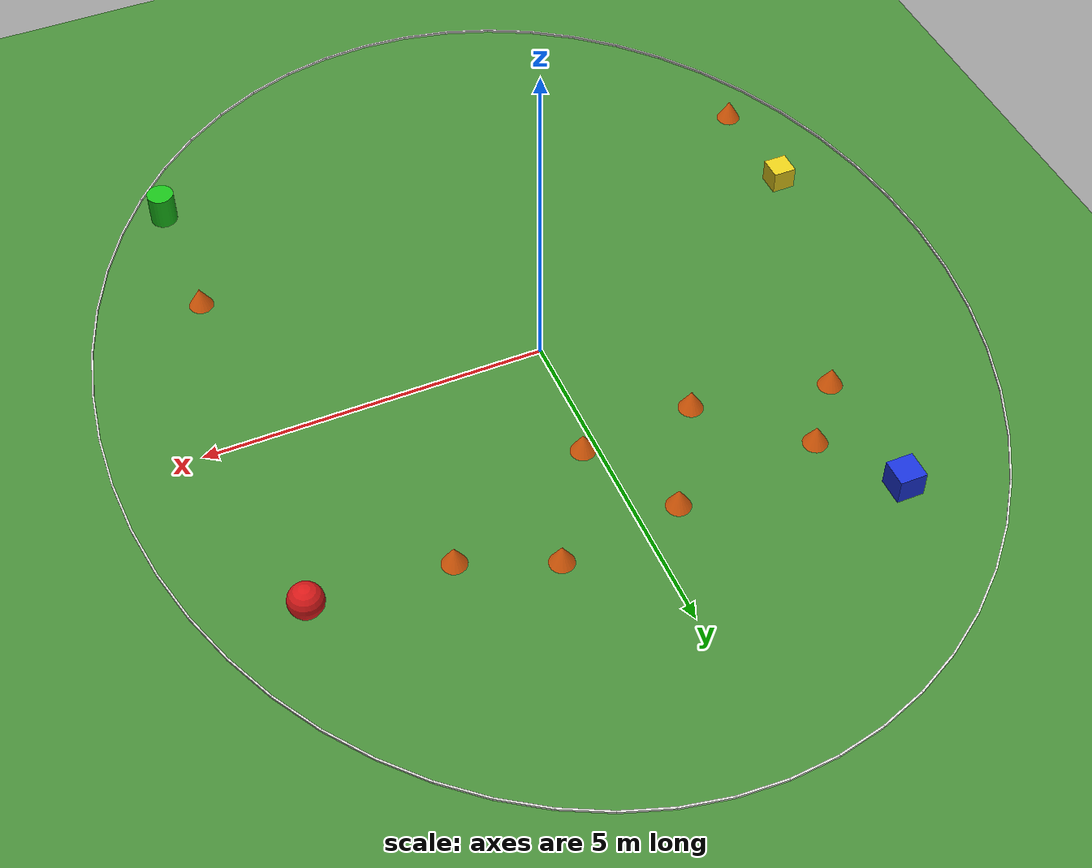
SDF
<sdf version="1.8">
 <world name="james_oval_mission_world">
  <plugin filename="libgz-sim-physics-system" name="gz::sim::systems::Physics"/>
  <plugin filename="libgz-sim-user-commands-system" name="gz::sim::systems::UserCommands"/>
  <plugin filename="libgz-sim-scene-broadcaster-system" name="gz::sim::systems::SceneBroadcaster"/>
  <plugin filename="libgz-sim-imu-system" name="gz::sim::systems::Imu"/>
  <plugin filename="libgz-sim-sensors-system.so" name="gz::sim::systems::Sensors">
   <render_engine>ogre</render_engine>
  </plugin>
  <plugin filename="libgz-sim-contact-system" name="gz::sim::systems::Contact"/>
  <physics name="default_physics" type="ode">
   <max_step_size>0.004</max_step_size>
   <real_time_factor>1.0</real_time_factor>
   <real_time_update_rate>250</real_time_update_rate>
  </physics>
  <light type="directional" name="sun">
   <pose>0 0 10 0 0 0</pose>
   <diffuse>0.8 0.8 0.8 1</diffuse>
   <specular>0.2 0.2 0.2 1</specular>
   <attenuation>
    <range>1000</range>
    <constant>0.9</constant>
    <linear>0.01</linear>
    <quadratic>0.001</quadratic>
   </attenuation>
   <direction>-0.5 0.1 -0.9</direction>
  </light>
  <model name="ground_plane">
   <static>true</static>
   <link name="link">
    <collision name="collision"><geometry><plane><normal>0 0 1</normal></plane></geometry></collision>
    <visual name="visual">
     <geometry><plane><normal>0 0 1</normal><size>22 22</size></plane></geometry>
     <material>
      <ambient>0.22 0.48 0.18 1</ambient>
      <diffuse>0.28 0.55 0.22 1</diffuse>
      <specular>0.12 0.12 0.12 1</specular>
     </material>
    </visual>
   </link>
  </model>
  <model name="oval_fence_00">
   <static>true</static>
   <pose>6.2402 0.4205 0.0175 0 0 1.6176</pose>
   <link name="link">
    <visual name="v">
     <geometry><box><size>0.8411 0.025 0.035</size></box></geometry>
     <material><ambient>0.95 0.95 0.95 1</ambient><diffuse>0.9 0.9 0.88 1</diffuse></material>
    </visual>
    <collision name="c"><geometry><box><size>0.8411 0.025 0.035</size></box></geometry></collision>
   </link>
  </model>
  <model name="oval_fence_01">
   <static>true</static>
   <pose>6.1617 1.2563 0.0175 0 0 1.7115</pose>
   <link name="link">
    <visual name="v">
     <geometry><box><size>0.8379 0.025 0.035</size></box></geometry>
     <material><ambient>0.95 0.95 0.95 1</ambient><diffuse>0.9 0.9 0.88 1</diffuse></material>
    </visual>
    <collision name="c"><geometry><box><size>0.8379 0.025 0.035</size></box></geometry></collision>
   </link>
  </model>
  <model name="oval_fence_02">
   <static>true</static>
   <pose>6.0057 2.0763 0.0175 0 0 1.8064</pose>
   <link name="link">
    <visual name="v">
     <geometry><box><size>0.8316 0.025 0.035</size></box></geometry>
     <material><ambient>0.95 0.95 0.95 1</ambient><diffuse>0.9 0.9 0.88 1</diffuse></material>
    </visual>
    <collision name="c"><geometry><box><size>0.8316 0.025 0.035</size></box></geometry></collision>
   </link>
  </model>
  <model name="oval_fence_03">
   <static>true</static>
   <pose>5.7742 2.8701 0.0175 0 0 1.9032</pose>
   <link name="link">
    <visual name="v">
     <geometry><box><size>0.8225 0.025 0.035</size></box></geometry>
     <material><ambient>0.95 0.95 0.95 1</ambient><diffuse>0.9 0.9 0.88 1</diffuse></material>
    </visual>
    <collision name="c"><geometry><box><size>0.8225 0.025 0.035</size></box></geometry></collision>
   </link>
  </model>
  <model name="oval_fence_04">
   <static>true</static>
   <pose>5.4701 3.6279 0.0175 0 0 2.0024</pose>
   <link name="link">
    <visual name="v">
     <geometry><box><size>0.8109 0.025 0.035</size></box></geometry>
     <material><ambient>0.95 0.95 0.95 1</ambient><diffuse>0.9 0.9 0.88 1</diffuse></material>
    </visual>
    <collision name="c"><geometry><box><size>0.8109 0.025 0.035</size></box></geometry></collision>
   </link>
  </model>
  <model name="oval_fence_05">
   <static>true</static>
   <pose>5.0973 4.34 0.0175 0 0 2.1048</pose>
   <link name="link">
    <visual name="v">
     <geometry><box><size>0.7973 0.025 0.035</size></box></geometry>
     <material><ambient>0.95 0.95 0.95 1</ambient><diffuse>0.9 0.9 0.88 1</diffuse></material>
    </visual>
    <collision name="c"><geometry><box><size>0.7973 0.025 0.035</size></box></geometry></collision>
   </link>
  </model>
  <model name="oval_fence_06">
   <static>true</static>
   <pose>4.6603 4.9976 0.0175 0 0 2.2109</pose>
   <link name="link">
    <visual name="v">
     <geometry><box><size>0.7823 0.025 0.035</size></box></geometry>
     <material><ambient>0.95 0.95 0.95 1</ambient><diffuse>0.9 0.9 0.88 1</diffuse></material>
    </visual>
    <collision name="c"><geometry><box><size>0.7823 0.025 0.035</size></box></geometry></collision>
   </link>
  </model>
  <model name="oval_fence_07">
   <static>true</static>
   <pose>4.1647 5.5923 0.0175 0 0 2.3213</pose>
   <link name="link">
    <visual name="v">
     <geometry><box><size>0.7667 0.025 0.035</size></box></geometry>
     <material><ambient>0.95 0.95 0.95 1</ambient><diffuse>0.9 0.9 0.88 1</diffuse></material>
    </visual>
    <collision name="c"><geometry><box><size>0.7667 0.025 0.035</size></box></geometry></collision>
   </link>
  </model>
  <model name="oval_fence_08">
   <static>true</static>
   <pose>3.6167 6.1167 0.0175 0 0 2.4363</pose>
   <link name="link">
    <visual name="v">
     <geometry><box><size>0.7511 0.025 0.035</size></box></geometry>
     <material><ambient>0.95 0.95 0.95 1</ambient><diffuse>0.9 0.9 0.88 1</diffuse></material>
    </visual>
    <collision name="c"><geometry><box><size>0.7511 0.025 0.035</size></box></geometry></collision>
   </link>
  </model>
  <model name="oval_fence_09">
   <static>true</static>
   <pose>3.0232 6.5642 0.0175 0 0 2.556</pose>
   <link name="link">
    <visual name="v">
     <geometry><box><size>0.7365 0.025 0.035</size></box></geometry>
     <material><ambient>0.95 0.95 0.95 1</ambient><diffuse>0.9 0.9 0.88 1</diffuse></material>
    </visual>
    <collision name="c"><geometry><box><size>0.7365 0.025 0.035</size></box></geometry></collision>
   </link>
  </model>
  <model name="oval_fence_10">
   <static>true</static>
   <pose>2.3918 6.9291 0.0175 0 0 2.6803</pose>
   <link name="link">
    <visual name="v">
     <geometry><box><size>0.7235 0.025 0.035</size></box></geometry>
     <material><ambient>0.95 0.95 0.95 1</ambient><diffuse>0.9 0.9 0.88 1</diffuse></material>
    </visual>
    <collision name="c"><geometry><box><size>0.7235 0.025 0.035</size></box></geometry></collision>
   </link>
  </model>
  <model name="oval_fence_11">
   <static>true</static>
   <pose>1.7302 7.2069 0.0175 0 0 2.8087</pose>
   <link name="link">
    <visual name="v">
     <geometry><box><size>0.713 0.025 0.035</size></box></geometry>
     <material><ambient>0.95 0.95 0.95 1</ambient><diffuse>0.9 0.9 0.88 1</diffuse></material>
    </visual>
    <collision name="c"><geometry><box><size>0.713 0.025 0.035</size></box></geometry></collision>
   </link>
  </model>
  <model name="oval_fence_12">
   <static>true</static>
   <pose>1.0469 7.394 0.0175 0 0 2.9405</pose>
   <link name="link">
    <visual name="v">
     <geometry><box><size>0.7056 0.025 0.035</size></box></geometry>
     <material><ambient>0.95 0.95 0.95 1</ambient><diffuse>0.9 0.9 0.88 1</diffuse></material>
    </visual>
    <collision name="c"><geometry><box><size>0.7056 0.025 0.035</size></box></geometry></collision>
   </link>
  </model>
  <model name="oval_fence_13">
   <static>true</static>
   <pose>0.3504 7.4882 0.0175 0 0 3.0743</pose>
   <link name="link">
    <visual name="v">
     <geometry><box><size>0.7017 0.025 0.035</size></box></geometry>
     <material><ambient>0.95 0.95 0.95 1</ambient><diffuse>0.9 0.9 0.88 1</diffuse></material>
    </visual>
    <collision name="c"><geometry><box><size>0.7017 0.025 0.035</size></box></geometry></collision>
   </link>
  </model>
  <model name="oval_fence_14">
   <static>true</static>
   <pose>-0.3504 7.4882 0.0175 0 0 -3.0743</pose>
   <link name="link">
    <visual name="v">
     <geometry><box><size>0.7017 0.025 0.035</size></box></geometry>
     <material><ambient>0.95 0.95 0.95 1</ambient><diffuse>0.9 0.9 0.88 1</diffuse></material>
    </visual>
    <collision name="c"><geometry><box><size>0.7017 0.025 0.035</size></box></geometry></collision>
   </link>
  </model>
  <model name="oval_fence_15">
   <static>true</static>
   <pose>-1.0469 7.394 0.0175 0 0 -2.9405</pose>
   <link name="link">
    <visual name="v">
     <geometry><box><size>0.7056 0.025 0.035</size></box></geometry>
     <material><ambient>0.95 0.95 0.95 1</ambient><diffuse>0.9 0.9 0.88 1</diffuse></material>
    </visual>
    <collision name="c"><geometry><box><size>0.7056 0.025 0.035</size></box></geometry></collision>
   </link>
  </model>
  <model name="oval_fence_16">
   <static>true</static>
   <pose>-1.7302 7.2069 0.0175 0 0 -2.8087</pose>
   <link name="link">
    <visual name="v">
     <geometry><box><size>0.713 0.025 0.035</size></box></geometry>
     <material><ambient>0.95 0.95 0.95 1</ambient><diffuse>0.9 0.9 0.88 1</diffuse></material>
    </visual>
    <collision name="c"><geometry><box><size>0.713 0.025 0.035</size></box></geometry></collision>
   </link>
  </model>
  <model name="oval_fence_17">
   <static>true</static>
   <pose>-2.3918 6.9291 0.0175 0 0 -2.6803</pose>
   <link name="link">
    <visual name="v">
     <geometry><box><size>0.7235 0.025 0.035</size></box></geometry>
     <material><ambient>0.95 0.95 0.95 1</ambient><diffuse>0.9 0.9 0.88 1</diffuse></material>
    </visual>
    <collision name="c"><geometry><box><size>0.7235 0.025 0.035</size></box></geometry></collision>
   </link>
  </model>
  <model name="oval_fence_18">
   <static>true</static>
   <pose>-3.0232 6.5642 0.0175 0 0 -2.556</pose>
   <link name="link">
    <visual name="v">
     <geometry><box><size>0.7365 0.025 0.035</size></box></geometry>
     <material><ambient>0.95 0.95 0.95 1</ambient><diffuse>0.9 0.9 0.88 1</diffuse></material>
    </visual>
    <collision name="c"><geometry><box><size>0.7365 0.025 0.035</size></box></geometry></collision>
   </link>
  </model>
  <model name="oval_fence_19">
   <static>true</static>
   <pose>-3.6167 6.1167 0.0175 0 0 -2.4363</pose>
   <link name="link">
    <visual name="v">
     <geometry><box><size>0.7511 0.025 0.035</size></box></geometry>
     <material><ambient>0.95 0.95 0.95 1</ambient><diffuse>0.9 0.9 0.88 1</diffuse></material>
    </visual>
    <collision name="c"><geometry><box><size>0.7511 0.025 0.035</size></box></geometry></collision>
   </link>
  </model>
  <model name="oval_fence_20">
   <static>true</static>
   <pose>-4.1647 5.5923 0.0175 0 0 -2.3213</pose>
   <link name="link">
    <visual name="v">
     <geometry><box><size>0.7667 0.025 0.035</size></box></geometry>
     <material><ambient>0.95 0.95 0.95 1</ambient><diffuse>0.9 0.9 0.88 1</diffuse></material>
    </visual>
    <collision name="c"><geometry><box><size>0.7667 0.025 0.035</size></box></geometry></collision>
   </link>
  </model>
  <model name="oval_fence_21">
   <static>true</static>
   <pose>-4.6603 4.9976 0.0175 0 0 -2.2109</pose>
   <link name="link">
    <visual name="v">
     <geometry><box><size>0.7823 0.025 0.035</size></box></geometry>
     <material><ambient>0.95 0.95 0.95 1</ambient><diffuse>0.9 0.9 0.88 1</diffuse></material>
    </visual>
    <collision name="c"><geometry><box><size>0.7823 0.025 0.035</size></box></geometry></collision>
   </link>
  </model>
  <model name="oval_fence_22">
   <static>true</static>
   <pose>-5.0973 4.34 0.0175 0 0 -2.1048</pose>
   <link name="link">
    <visual name="v">
     <geometry><box><size>0.7973 0.025 0.035</size></box></geometry>
     <material><ambient>0.95 0.95 0.95 1</ambient><diffuse>0.9 0.9 0.88 1</diffuse></material>
    </visual>
    <collision name="c"><geometry><box><size>0.7973 0.025 0.035</size></box></geometry></collision>
   </link>
  </model>
  <model name="oval_fence_23">
   <static>true</static>
   <pose>-5.4701 3.6279 0.0175 0 0 -2.0024</pose>
   <link name="link">
    <visual name="v">
     <geometry><box><size>0.8109 0.025 0.035</size></box></geometry>
     <material><ambient>0.95 0.95 0.95 1</ambient><diffuse>0.9 0.9 0.88 1</diffuse></material>
    </visual>
    <collision name="c"><geometry><box><size>0.8109 0.025 0.035</size></box></geometry></collision>
   </link>
  </model>
  <model name="oval_fence_24">
   <static>true</static>
   <pose>-5.7742 2.8701 0.0175 0 0 -1.9032</pose>
   <link name="link">
    <visual name="v">
     <geometry><box><size>0.8225 0.025 0.035</size></box></geometry>
     <material><ambient>0.95 0.95 0.95 1</ambient><diffuse>0.9 0.9 0.88 1</diffuse></material>
    </visual>
    <collision name="c"><geometry><box><size>0.8225 0.025 0.035</size></box></geometry></collision>
   </link>
  </model>
  <model name="oval_fence_25">
   <static>true</static>
   <pose>-6.0057 2.0763 0.0175 0 0 -1.8064</pose>
   <link name="link">
    <visual name="v">
     <geometry><box><size>0.8316 0.025 0.035</size></box></geometry>
     <material><ambient>0.95 0.95 0.95 1</ambient><diffuse>0.9 0.9 0.88 1</diffuse></material>
    </visual>
    <collision name="c"><geometry><box><size>0.8316 0.025 0.035</size></box></geometry></collision>
   </link>
  </model>
  <model name="oval_fence_26">
   <static>true</static>
   <pose>-6.1617 1.2563 0.0175 0 0 -1.7115</pose>
   <link name="link">
    <visual name="v">
     <geometry><box><size>0.8379 0.025 0.035</size></box></geometry>
     <material><ambient>0.95 0.95 0.95 1</ambient><diffuse>0.9 0.9 0.88 1</diffuse></material>
    </visual>
    <collision name="c"><geometry><box><size>0.8379 0.025 0.035</size></box></geometry></collision>
   </link>
  </model>
  <model name="oval_fence_27">
   <static>true</static>
   <pose>-6.2402 0.4205 0.0175 0 0 -1.6176</pose>
   <link name="link">
    <visual name="v">
     <geometry><box><size>0.8411 0.025 0.035</size></box></geometry>
     <material><ambient>0.95 0.95 0.95 1</ambient><diffuse>0.9 0.9 0.88 1</diffuse></material>
    </visual>
    <collision name="c"><geometry><box><size>0.8411 0.025 0.035</size></box></geometry></collision>
   </link>
  </model>
  <model name="oval_fence_28">
   <static>true</static>
   <pose>-6.2402 -0.4205 0.0175 0 0 -1.524</pose>
   <link name="link">
    <visual name="v">
     <geometry><box><size>0.8411 0.025 0.035</size></box></geometry>
     <material><ambient>0.95 0.95 0.95 1</ambient><diffuse>0.9 0.9 0.88 1</diffuse></material>
    </visual>
    <collision name="c"><geometry><box><size>0.8411 0.025 0.035</size></box></geometry></collision>
   </link>
  </model>
  <model name="oval_fence_29">
   <static>true</static>
   <pose>-6.1617 -1.2563 0.0175 0 0 -1.4301</pose>
   <link name="link">
    <visual name="v">
     <geometry><box><size>0.8379 0.025 0.035</size></box></geometry>
     <material><ambient>0.95 0.95 0.95 1</ambient><diffuse>0.9 0.9 0.88 1</diffuse></material>
    </visual>
    <collision name="c"><geometry><box><size>0.8379 0.025 0.035</size></box></geometry></collision>
   </link>
  </model>
  <model name="oval_fence_30">
   <static>true</static>
   <pose>-6.0057 -2.0763 0.0175 0 0 -1.3352</pose>
   <link name="link">
    <visual name="v">
     <geometry><box><size>0.8316 0.025 0.035</size></box></geometry>
     <material><ambient>0.95 0.95 0.95 1</ambient><diffuse>0.9 0.9 0.88 1</diffuse></material>
    </visual>
    <collision name="c"><geometry><box><size>0.8316 0.025 0.035</size></box></geometry></collision>
   </link>
  </model>
  <model name="oval_fence_31">
   <static>true</static>
   <pose>-5.7742 -2.8701 0.0175 0 0 -1.2384</pose>
   <link name="link">
    <visual name="v">
     <geometry><box><size>0.8225 0.025 0.035</size></box></geometry>
     <material><ambient>0.95 0.95 0.95 1</ambient><diffuse>0.9 0.9 0.88 1</diffuse></material>
    </visual>
    <collision name="c"><geometry><box><size>0.8225 0.025 0.035</size></box></geometry></collision>
   </link>
  </model>
  <model name="oval_fence_32">
   <static>true</static>
   <pose>-5.4701 -3.6279 0.0175 0 0 -1.1392</pose>
   <link name="link">
    <visual name="v">
     <geometry><box><size>0.8109 0.025 0.035</size></box></geometry>
     <material><ambient>0.95 0.95 0.95 1</ambient><diffuse>0.9 0.9 0.88 1</diffuse></material>
    </visual>
    <collision name="c"><geometry><box><size>0.8109 0.025 0.035</size></box></geometry></collision>
   </link>
  </model>
  <model name="oval_fence_33">
   <static>true</static>
   <pose>-5.0973 -4.34 0.0175 0 0 -1.0368</pose>
   <link name="link">
    <visual name="v">
     <geometry><box><size>0.7973 0.025 0.035</size></box></geometry>
     <material><ambient>0.95 0.95 0.95 1</ambient><diffuse>0.9 0.9 0.88 1</diffuse></material>
    </visual>
    <collision name="c"><geometry><box><size>0.7973 0.025 0.035</size></box></geometry></collision>
   </link>
  </model>
  <model name="oval_fence_34">
   <static>true</static>
   <pose>-4.6603 -4.9976 0.0175 0 0 -0.9307</pose>
   <link name="link">
    <visual name="v">
     <geometry><box><size>0.7823 0.025 0.035</size></box></geometry>
     <material><ambient>0.95 0.95 0.95 1</ambient><diffuse>0.9 0.9 0.88 1</diffuse></material>
    </visual>
    <collision name="c"><geometry><box><size>0.7823 0.025 0.035</size></box></geometry></collision>
   </link>
  </model>
  <model name="oval_fence_35">
   <static>true</static>
   <pose>-4.1647 -5.5923 0.0175 0 0 -0.8203</pose>
   <link name="link">
    <visual name="v">
     <geometry><box><size>0.7667 0.025 0.035</size></box></geometry>
     <material><ambient>0.95 0.95 0.95 1</ambient><diffuse>0.9 0.9 0.88 1</diffuse></material>
    </visual>
    <collision name="c"><geometry><box><size>0.7667 0.025 0.035</size></box></geometry></collision>
   </link>
  </model>
  <model name="oval_fence_36">
   <static>true</static>
   <pose>-3.6167 -6.1167 0.0175 0 0 -0.7053</pose>
   <link name="link">
    <visual name="v">
     <geometry><box><size>0.7511 0.025 0.035</size></box></geometry>
     <material><ambient>0.95 0.95 0.95 1</ambient><diffuse>0.9 0.9 0.88 1</diffuse></material>
    </visual>
    <collision name="c"><geometry><box><size>0.7511 0.025 0.035</size></box></geometry></collision>
   </link>
  </model>
  <model name="oval_fence_37">
   <static>true</static>
   <pose>-3.0232 -6.5642 0.0175 0 0 -0.5856</pose>
   <link name="link">
    <visual name="v">
     <geometry><box><size>0.7365 0.025 0.035</size></box></geometry>
     <material><ambient>0.95 0.95 0.95 1</ambient><diffuse>0.9 0.9 0.88 1</diffuse></material>
    </visual>
    <collision name="c"><geometry><box><size>0.7365 0.025 0.035</size></box></geometry></collision>
   </link>
  </model>
  <model name="oval_fence_38">
   <static>true</static>
   <pose>-2.3918 -6.9291 0.0175 0 0 -0.4613</pose>
   <link name="link">
    <visual name="v">
     <geometry><box><size>0.7235 0.025 0.035</size></box></geometry>
     <material><ambient>0.95 0.95 0.95 1</ambient><diffuse>0.9 0.9 0.88 1</diffuse></material>
    </visual>
    <collision name="c"><geometry><box><size>0.7235 0.025 0.035</size></box></geometry></collision>
   </link>
  </model>
  <model name="oval_fence_39">
   <static>true</static>
   <pose>-1.7302 -7.2069 0.0175 0 0 -0.3329</pose>
   <link name="link">
    <visual name="v">
     <geometry><box><size>0.713 0.025 0.035</size></box></geometry>
     <material><ambient>0.95 0.95 0.95 1</ambient><diffuse>0.9 0.9 0.88 1</diffuse></material>
    </visual>
    <collision name="c"><geometry><box><size>0.713 0.025 0.035</size></box></geometry></collision>
   </link>
  </model>
  <model name="oval_fence_40">
   <static>true</static>
   <pose>-1.0469 -7.394 0.0175 0 0 -0.2011</pose>
   <link name="link">
    <visual name="v">
     <geometry><box><size>0.7056 0.025 0.035</size></box></geometry>
     <material><ambient>0.95 0.95 0.95 1</ambient><diffuse>0.9 0.9 0.88 1</diffuse></material>
    </visual>
    <collision name="c"><geometry><box><size>0.7056 0.025 0.035</size></box></geometry></collision>
   </link>
  </model>
  <model name="oval_fence_41">
   <static>true</static>
   <pose>-0.3504 -7.4882 0.0175 0 0 -0.0673</pose>
   <link name="link">
    <visual name="v">
     <geometry><box><size>0.7017 0.025 0.035</size></box></geometry>
     <material><ambient>0.95 0.95 0.95 1</ambient><diffuse>0.9 0.9 0.88 1</diffuse></material>
    </visual>
    <collision name="c"><geometry><box><size>0.7017 0.025 0.035</size></box></geometry></collision>
   </link>
  </model>
  <model name="oval_fence_42">
   <static>true</static>
   <pose>0.3504 -7.4882 0.0175 0 0 0.0673</pose>
   <link name="link">
    <visual name="v">
     <geometry><box><size>0.7017 0.025 0.035</size></box></geometry>
     <material><ambient>0.95 0.95 0.95 1</ambient><diffuse>0.9 0.9 0.88 1</diffuse></material>
    </visual>
    <collision name="c"><geometry><box><size>0.7017 0.025 0.035</size></box></geometry></collision>
   </link>
  </model>
  <model name="oval_fence_43">
   <static>true</static>
   <pose>1.0469 -7.394 0.0175 0 0 0.2011</pose>
   <link name="link">
    <visual name="v">
     <geometry><box><size>0.7056 0.025 0.035</size></box></geometry>
     <material><ambient>0.95 0.95 0.95 1</ambient><diffuse>0.9 0.9 0.88 1</diffuse></material>
    </visual>
    <collision name="c"><geometry><box><size>0.7056 0.025 0.035</size></box></geometry></collision>
   </link>
  </model>
  <model name="oval_fence_44">
   <static>true</static>
   <pose>1.7302 -7.2069 0.0175 0 0 0.3329</pose>
   <link name="link">
    <visual name="v">
     <geometry><box><size>0.713 0.025 0.035</size></box></geometry>
     <material><ambient>0.95 0.95 0.95 1</ambient><diffuse>0.9 0.9 0.88 1</diffuse></material>
    </visual>
    <collision name="c"><geometry><box><size>0.713 0.025 0.035</size></box></geometry></collision>
   </link>
  </model>
  <model name="oval_fence_45">
   <static>true</static>
   <pose>2.3918 -6.9291 0.0175 0 0 0.4613</pose>
   <link name="link">
    <visual name="v">
     <geometry><box><size>0.7235 0.025 0.035</size></box></geometry>
     <material><ambient>0.95 0.95 0.95 1</ambient><diffuse>0.9 0.9 0.88 1</diffuse></material>
    </visual>
    <collision name="c"><geometry><box><size>0.7235 0.025 0.035</size></box></geometry></collision>
   </link>
  </model>
  <model name="oval_fence_46">
   <static>true</static>
   <pose>3.0232 -6.5642 0.0175 0 0 0.5856</pose>
   <link name="link">
    <visual name="v">
     <geometry><box><size>0.7365 0.025 0.035</size></box></geometry>
     <material><ambient>0.95 0.95 0.95 1</ambient><diffuse>0.9 0.9 0.88 1</diffuse></material>
    </visual>
    <collision name="c"><geometry><box><size>0.7365 0.025 0.035</size></box></geometry></collision>
   </link>
  </model>
  <model name="oval_fence_47">
   <static>true</static>
   <pose>3.6167 -6.1167 0.0175 0 0 0.7053</pose>
   <link name="link">
    <visual name="v">
     <geometry><box><size>0.7511 0.025 0.035</size></box></geometry>
     <material><ambient>0.95 0.95 0.95 1</ambient><diffuse>0.9 0.9 0.88 1</diffuse></material>
    </visual>
    <collision name="c"><geometry><box><size>0.7511 0.025 0.035</size></box></geometry></collision>
   </link>
  </model>
  <model name="oval_fence_48">
   <static>true</static>
   <pose>4.1647 -5.5923 0.0175 0 0 0.8203</pose>
   <link name="link">
    <visual name="v">
     <geometry><box><size>0.7667 0.025 0.035</size></box></geometry>
     <material><ambient>0.95 0.95 0.95 1</ambient><diffuse>0.9 0.9 0.88 1</diffuse></material>
    </visual>
    <collision name="c"><geometry><box><size>0.7667 0.025 0.035</size></box></geometry></collision>
   </link>
  </model>
  <model name="oval_fence_49">
   <static>true</static>
   <pose>4.6603 -4.9976 0.0175 0 0 0.9307</pose>
   <link name="link">
    <visual name="v">
     <geometry><box><size>0.7823 0.025 0.035</size></box></geometry>
     <material><ambient>0.95 0.95 0.95 1</ambient><diffuse>0.9 0.9 0.88 1</diffuse></material>
    </visual>
    <collision name="c"><geometry><box><size>0.7823 0.025 0.035</size></box></geometry></collision>
   </link>
  </model>
  <model name="oval_fence_50">
   <static>true</static>
   <pose>5.0973 -4.34 0.0175 0 0 1.0368</pose>
   <link name="link">
    <visual name="v">
     <geometry><box><size>0.7973 0.025 0.035</size></box></geometry>
     <material><ambient>0.95 0.95 0.95 1</ambient><diffuse>0.9 0.9 0.88 1</diffuse></material>
    </visual>
    <collision name="c"><geometry><box><size>0.7973 0.025 0.035</size></box></geometry></collision>
   </link>
  </model>
  <model name="oval_fence_51">
   <static>true</static>
   <pose>5.4701 -3.6279 0.0175 0 0 1.1392</pose>
   <link name="link">
    <visual name="v">
     <geometry><box><size>0.8109 0.025 0.035</size></box></geometry>
     <material><ambient>0.95 0.95 0.95 1</ambient><diffuse>0.9 0.9 0.88 1</diffuse></material>
    </visual>
    <collision name="c"><geometry><box><size>0.8109 0.025 0.035</size></box></geometry></collision>
   </link>
  </model>
  <model name="oval_fence_52">
   <static>true</static>
   <pose>5.7742 -2.8701 0.0175 0 0 1.2384</pose>
   <link name="link">
    <visual name="v">
     <geometry><box><size>0.8225 0.025 0.035</size></box></geometry>
     <material><ambient>0.95 0.95 0.95 1</ambient><diffuse>0.9 0.9 0.88 1</diffuse></material>
    </visual>
    <collision name="c"><geometry><box><size>0.8225 0.025 0.035</size></box></geometry></collision>
   </link>
  </model>
  <model name="oval_fence_53">
   <static>true</static>
   <pose>6.0057 -2.0763 0.0175 0 0 1.3352</pose>
   <link name="link">
    <visual name="v">
     <geometry><box><size>0.8316 0.025 0.035</size></box></geometry>
     <material><ambient>0.95 0.95 0.95 1</ambient><diffuse>0.9 0.9 0.88 1</diffuse></material>
    </visual>
    <collision name="c"><geometry><box><size>0.8316 0.025 0.035</size></box></geometry></collision>
   </link>
  </model>
  <model name="oval_fence_54">
   <static>true</static>
   <pose>6.1617 -1.2563 0.0175 0 0 1.4301</pose>
   <link name="link">
    <visual name="v">
     <geometry><box><size>0.8379 0.025 0.035</size></box></geometry>
     <material><ambient>0.95 0.95 0.95 1</ambient><diffuse>0.9 0.9 0.88 1</diffuse></material>
    </visual>
    <collision name="c"><geometry><box><size>0.8379 0.025 0.035</size></box></geometry></collision>
   </link>
  </model>
  <model name="oval_fence_55">
   <static>true</static>
   <pose>6.2402 -0.4205 0.0175 0 0 1.524</pose>
   <link name="link">
    <visual name="v">
     <geometry><box><size>0.8411 0.025 0.035</size></box></geometry>
     <material><ambient>0.95 0.95 0.95 1</ambient><diffuse>0.9 0.9 0.88 1</diffuse></material>
    </visual>
    <collision name="c"><geometry><box><size>0.8411 0.025 0.035</size></box></geometry></collision>
   </link>
  </model>
  <model name="waypoint_cone_1">
   <static>true</static>
   <pose>2.5 3.0 0.16 0 0 0</pose>
   <link name="link">
    <visual name="v">
     <geometry><cone><radius>0.18</radius><length>0.32</length></cone></geometry>
     <material><ambient>1.0 0.35 0.0 1</ambient><diffuse>0.95 0.4 0.05 1</diffuse></material>
    </visual>
    <collision name="c"><geometry><cone><radius>0.18</radius><length>0.32</length></cone></geometry></collision>
   </link>
  </model>
  <model name="waypoint_cone_2">
   <static>true</static>
   <pose>-3.5 2.2 0.16 0 0 0</pose>
   <link name="link">
    <visual name="v">
     <geometry><cone><radius>0.18</radius><length>0.32</length></cone></geometry>
     <material><ambient>1.0 0.35 0.0 1</ambient><diffuse>0.95 0.4 0.05 1</diffuse></material>
    </visual>
    <collision name="c"><geometry><cone><radius>0.18</radius><length>0.32</length></cone></geometry></collision>
   </link>
  </model>
  <model name="waypoint_cone_3">
   <static>true</static>
   <pose>4.2 -2.8 0.16 0 0 0</pose>
   <link name="link">
    <visual name="v">
     <geometry><cone><radius>0.18</radius><length>0.32</length></cone></geometry>
     <material><ambient>1.0 0.35 0.0 1</ambient><diffuse>0.95 0.4 0.05 1</diffuse></material>
    </visual>
    <collision name="c"><geometry><cone><radius>0.18</radius><length>0.32</length></cone></geometry></collision>
   </link>
  </model>
  <model name="waypoint_cone_4">
   <static>true</static>
   <pose>-4.8 -3.5 0.16 0 0 0</pose>
   <link name="link">
    <visual name="v">
     <geometry><cone><radius>0.18</radius><length>0.32</length></cone></geometry>
     <material><ambient>1.0 0.35 0.0 1</ambient><diffuse>0.95 0.4 0.05 1</diffuse></material>
    </visual>
    <collision name="c"><geometry><cone><radius>0.18</radius><length>0.32</length></cone></geometry></collision>
   </link>
  </model>
  <model name="weave_cone_1">
   <static>true</static>
   <pose>1.207 3.533 0.16 0 0 0</pose>
   <link name="link">
    <visual name="v">
     <geometry><cone><radius>0.18</radius><length>0.32</length></cone></geometry>
     <material><ambient>1.0 0.35 0.0 1</ambient><diffuse>0.95 0.4 0.05 1</diffuse></material>
    </visual>
    <collision name="c"><geometry><cone><radius>0.18</radius><length>0.32</length></cone></geometry></collision>
   </link>
  </model>
  <model name="weave_cone_2">
   <static>true</static>
   <pose>0.192 1.927 0.16 0 0 0</pose>
   <link name="link">
    <visual name="v">
     <geometry><cone><radius>0.18</radius><length>0.32</length></cone></geometry>
     <material><ambient>1.0 0.35 0.0 1</ambient><diffuse>0.95 0.4 0.05 1</diffuse></material>
    </visual>
    <collision name="c"><geometry><cone><radius>0.18</radius><length>0.32</length></cone></geometry></collision>
   </link>
  </model>
  <model name="weave_cone_3">
   <static>true</static>
   <pose>-0.592 3.293 0.16 0 0 0</pose>
   <link name="link">
    <visual name="v">
     <geometry><cone><radius>0.18</radius><length>0.32</length></cone></geometry>
     <material><ambient>1.0 0.35 0.0 1</ambient><diffuse>0.95 0.4 0.05 1</diffuse></material>
    </visual>
    <collision name="c"><geometry><cone><radius>0.18</radius><length>0.32</length></cone></geometry></collision>
   </link>
  </model>
  <model name="weave_cone_4">
   <static>true</static>
   <pose>-1.508 1.807 0.16 0 0 0</pose>
   <link name="link">
    <visual name="v">
     <geometry><cone><radius>0.18</radius><length>0.32</length></cone></geometry>
     <material><ambient>1.0 0.35 0.0 1</ambient><diffuse>0.95 0.4 0.05 1</diffuse></material>
    </visual>
    <collision name="c"><geometry><cone><radius>0.18</radius><length>0.32</length></cone></geometry></collision>
   </link>
  </model>
  <model name="weave_cone_5">
   <static>true</static>
   <pose>-2.792 3.053 0.16 0 0 0</pose>
   <link name="link">
    <visual name="v">
     <geometry><cone><radius>0.18</radius><length>0.32</length></cone></geometry>
     <material><ambient>1.0 0.35 0.0 1</ambient><diffuse>0.95 0.4 0.05 1</diffuse></material>
    </visual>
    <collision name="c"><geometry><cone><radius>0.18</radius><length>0.32</length></cone></geometry></collision>
   </link>
  </model>
  <model name="colored_obj_wp1">
   <static>true</static>
   <pose>4.5 3.0 0.3 0 0 0</pose>
   <link name="link">
    <visual name="v">
     <geometry><sphere><radius>0.25</radius></sphere></geometry>
     <material><ambient>0.9 0.1 0.1 1</ambient><diffuse>0.85 0.1 0.1 1</diffuse></material>
    </visual>
    <collision name="c"><geometry><sphere><radius>0.25</radius></sphere></geometry></collision>
   </link>
  </model>
  <model name="colored_obj_wp2">
   <static>true</static>
   <pose>-3.5 4.2 0.2 0 0 0</pose>
   <link name="link">
    <visual name="v">
     <geometry><box><size>0.4 0.4 0.4</size></box></geometry>
     <material><ambient>0.1 0.2 0.9 1</ambient><diffuse>0.1 0.2 0.85 1</diffuse></material>
    </visual>
    <collision name="c"><geometry><box><size>0.4 0.4 0.4</size></box></geometry></collision>
   </link>
  </model>
  <model name="colored_obj_wp3">
   <static>true</static>
   <pose>4.2 -4.8 0.25 0 0 0</pose>
   <link name="link">
    <visual name="v">
     <geometry><cylinder><radius>0.2</radius><length>0.5</length></cylinder></geometry>
     <material><ambient>0.1 0.8 0.1 1</ambient><diffuse>0.1 0.75 0.1 1</diffuse></material>
    </visual>
    <collision name="c">
     <geometry><cylinder><radius>0.2</radius><length>0.5</length></cylinder></geometry>
    </collision>
   </link>
  </model>
  <model name="colored_obj_wp4">
   <static>true</static>
   <pose>-4.8 -1.8 0.2 0 0 0</pose>
   <link name="link">
    <visual name="v">
     <geometry><box><size>0.35 0.35 0.35</size></box></geometry>
     <material><ambient>0.95 0.85 0.1 1</ambient><diffuse>0.9 0.8 0.1 1</diffuse></material>
    </visual>
    <collision name="c"><geometry><box><size>0.35 0.35 0.35</size></box></geometry></collision>
   </link>
  </model>
 </world>
</sdf>
